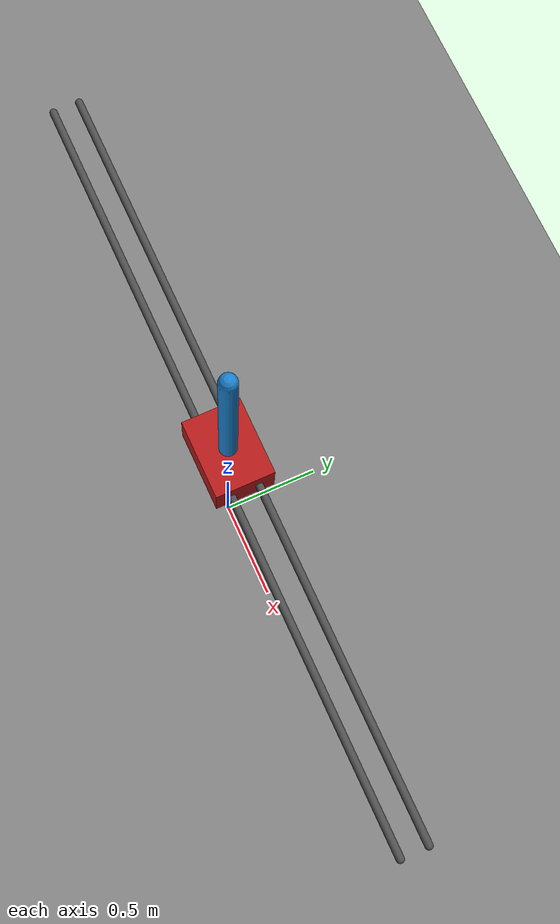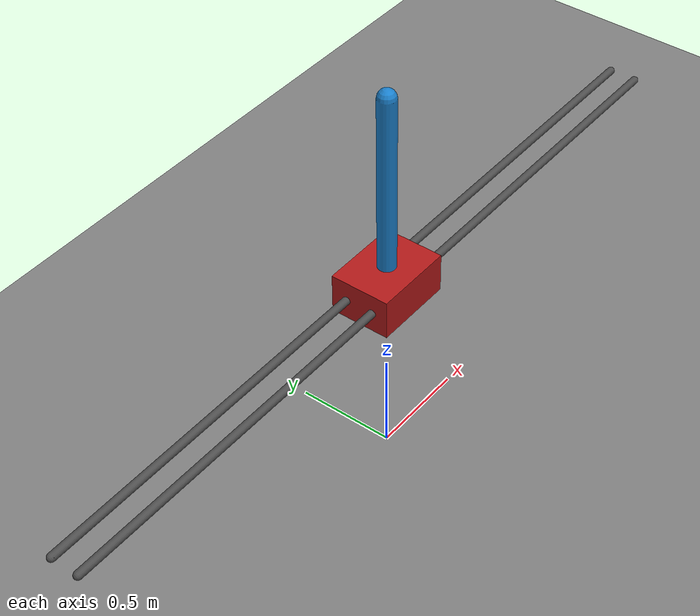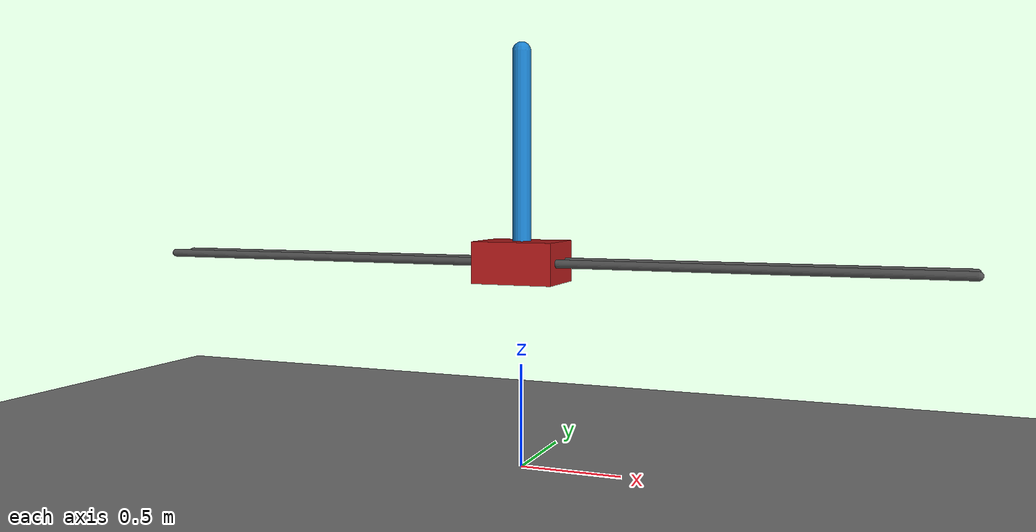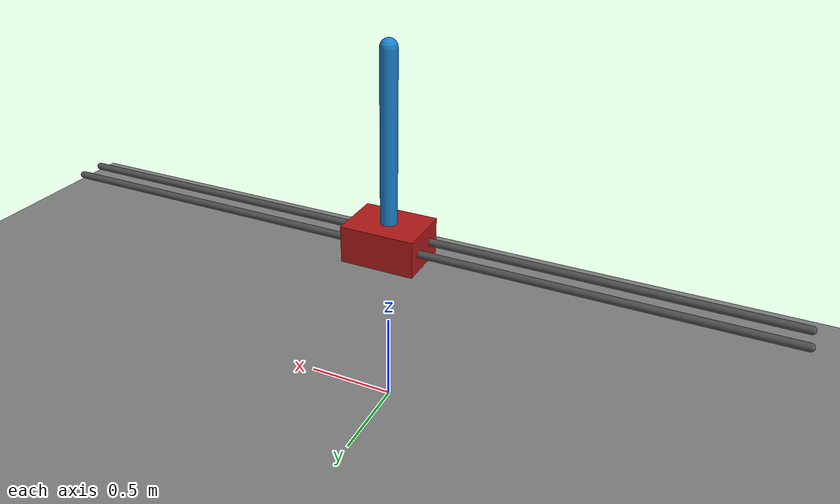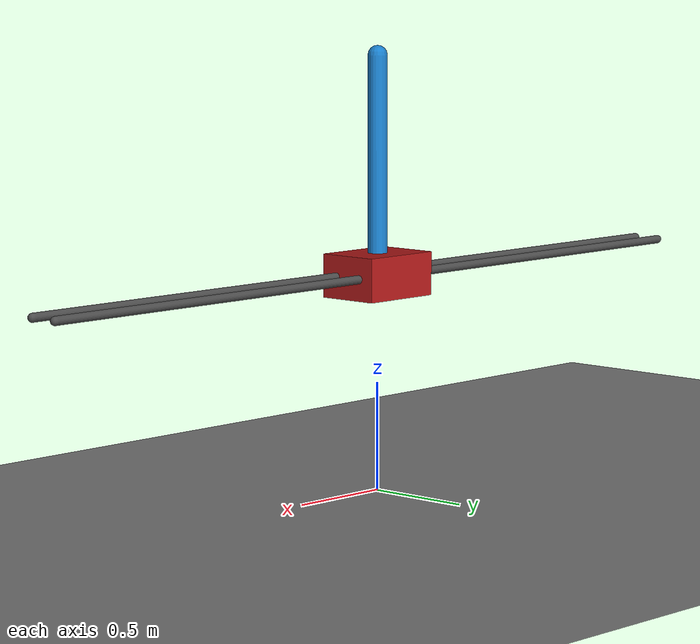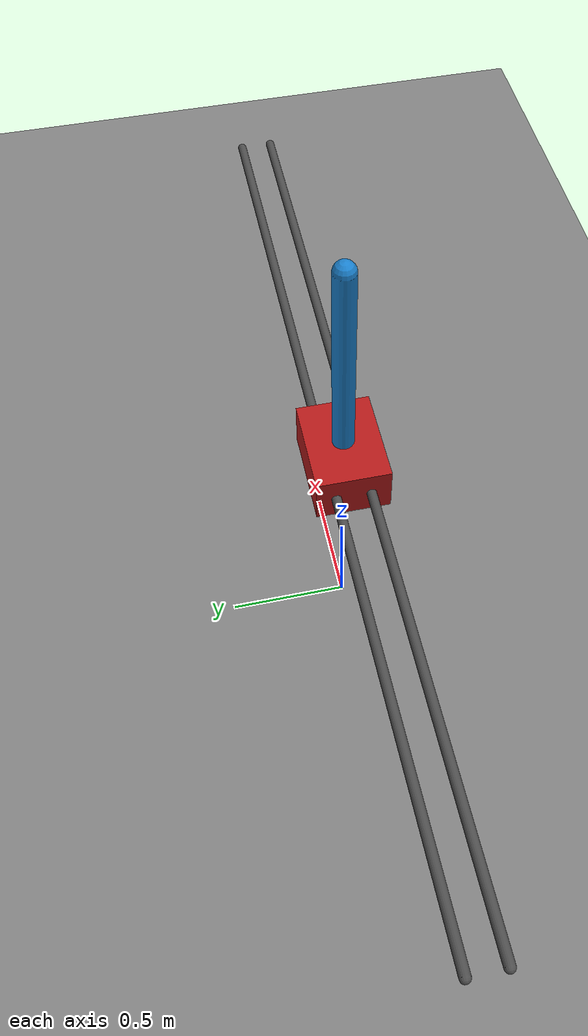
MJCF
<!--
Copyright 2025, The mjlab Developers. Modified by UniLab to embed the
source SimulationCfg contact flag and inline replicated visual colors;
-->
<mujoco model="mjlab_cartpole_fixture">
  <option timestep="0.01">
    <flag contact="disable"/>
  </option>
  <default>
    <default class="pole">
      <joint type="hinge" axis="0 1 0" damping="2e-6"/>
      <geom type="capsule" fromto="0 0 0 0 0 1" size="0.045" rgba=".1 .5 .8 1" mass=".1"/>
    </default>
  </default>
  <worldbody>
    <geom name="floor" pos="0 0 -.05" size="4 4 .2" type="plane"/>
    <geom name="rail1" type="capsule" pos="0 .07 1" zaxis="1 0 0" size="0.02 2" rgba=".3 .3 .3 1"/>
    <geom name="rail2" type="capsule" pos="0 -.07 1" zaxis="1 0 0" size="0.02 2" rgba=".3 .3 .3 1"/>
    <body name="cart" pos="0 0 1">
      <joint name="slider" type="slide" limited="true" axis="1 0 0" range="-1.8 1.8" solreflimit=".08 1" damping="5e-4"/>
      <geom name="cart" type="box" size="0.2 0.15 0.1" rgba=".7 .1 .1 1" mass="1"/>
      <body name="pole_1" childclass="pole">
        <joint name="hinge_1"/>
        <geom name="pole_1"/>
      </body>
    </body>
  </worldbody>
  <actuator>
    <motor name="slide" joint="slider" gear="10" ctrllimited="true" ctrlrange="-1 1"/>
  </actuator>
</mujoco>
